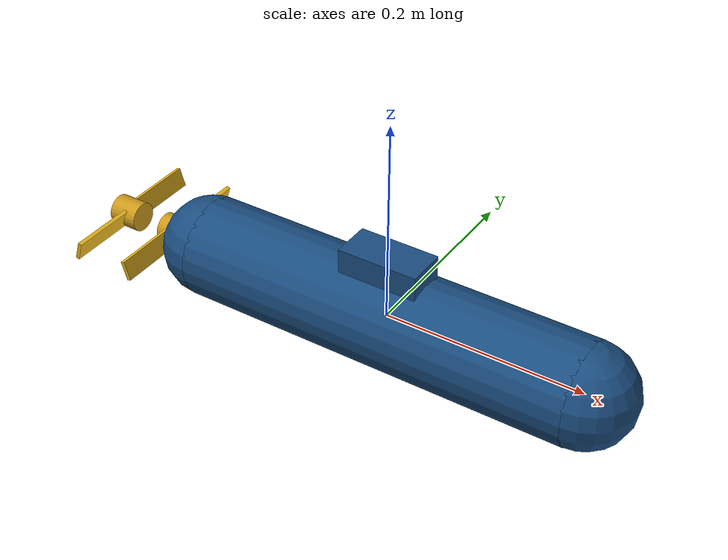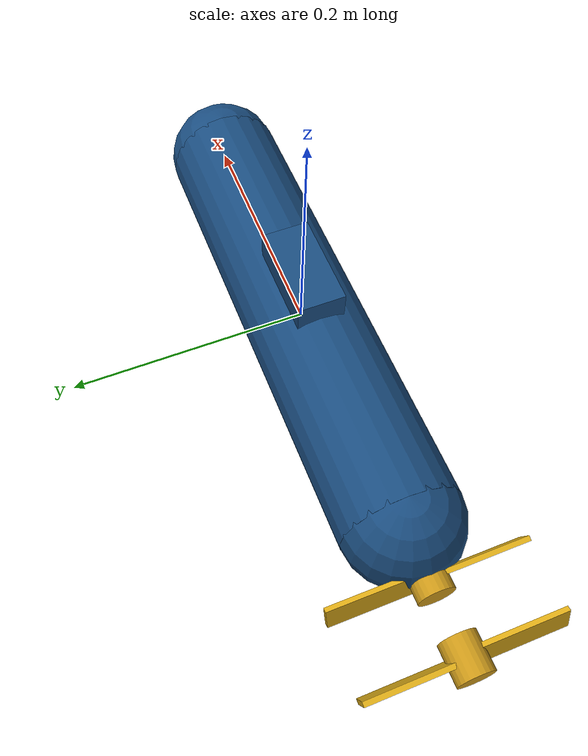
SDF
<?xml version="1.0" ?>
<sdf version="1.6">
  <world name="world">
    <model name="submarine">
      <pose>0 0 0 0 0 0</pose>

      <link name="base_link">
        <pose>0 0 0 0 0 0</pose>
        <inertial>
          <pose>0 0 0 0 0 0</pose>
          <mass>3.141592653589793</mass>
          <inertia>
            <ixx>0.003926990816987241</ixx>
            <ixy>0</ixy>
            <ixz>0</ixz>
            <iyy>0.04385139745635753</iyy>
            <iyz>0</iyz>
            <izz>0.04385139745635753</izz>
          </inertia>
        </inertial>
        <collision name="base_link_collision">
          <pose>0 0 0 0 1.5707963267948966 0</pose>
          <geometry>
            <cylinder>
              <radius>0.05</radius>
              <length>0.4</length>
            </cylinder>
          </geometry>
        </collision>
        <collision name="conning_tower_collision">
          <pose>0 0 0.05 0 0 0</pose>
          <geometry>
            <box>
              <size>0.08 0.04 0.04</size>
            </box>
          </geometry>
        </collision>
        <visual name="base_link_visual">
          <pose>0 0 0 0 1.5707963267948966 0</pose>
          <geometry>
            <cylinder>
              <radius>0.05</radius>
              <length>0.4</length>
            </cylinder>
          </geometry>
          <material>
            <ambient>0.1 0.3 0.5 1</ambient>
            <diffuse>0.1 0.3 0.5 1</diffuse>
            <specular>0.4 0.4 0.4 1</specular>
            <emissive>0 0 0 1</emissive>
          </material>
        </visual>
        <visual name="conning_tower_visual">
          <pose>0 0 0.05 0 0 0</pose>
          <geometry>
            <box>
              <size>0.08 0.04 0.04</size>
            </box>
          </geometry>
          <material>
            <ambient>0.1 0.3 0.5 1</ambient>
            <diffuse>0.1 0.3 0.5 1</diffuse>
            <specular>0.4 0.4 0.4 1</specular>
            <emissive>0 0 0 1</emissive>
          </material>
        </visual>
        <visual name="nose_visual">
          <pose>0.2 0 0 0 0 0</pose>
          <geometry>
            <sphere>
              <radius>0.05</radius>
            </sphere>
          </geometry>
          <material>
            <ambient>0.1 0.3 0.5 1</ambient>
            <diffuse>0.1 0.3 0.5 1</diffuse>
            <specular>0.4 0.4 0.4 1</specular>
            <emissive>0 0 0 1</emissive>
          </material>
        </visual>
        <visual name="tail_visual">
          <pose>-0.2 0 0 0 0 0</pose>
          <geometry>
            <sphere>
              <radius>0.05</radius>
            </sphere>
          </geometry>
          <material>
            <ambient>0.1 0.3 0.5 1</ambient>
            <diffuse>0.1 0.3 0.5 1</diffuse>
            <specular>0.4 0.4 0.4 1</specular>
            <emissive>0 0 0 1</emissive>
          </material>
        </visual>
      </link>

      <link name="propeller_hub_front">
        <pose>-0.245 0 0 0 0 0</pose>
        <inertial>
          <pose>0 0 0 0 0 0</pose>
          <mass>0.021205750411731104</mass>
          <inertia>
            <ixx>2.385646921319749e-06</ixx>
            <ixy>0</ixy>
            <ixz>0</ixz>
            <iyy>2.784321474773041e-06</iyy>
            <iyz>0</iyz>
            <izz>2.784321474773041e-06</izz>
          </inertia>
        </inertial>
        <collision name="propeller_hub_front_collision">
          <pose>0 0 0 0 1.5707963267948966 0</pose>
          <geometry>
            <cylinder>
              <radius>0.015</radius>
              <length>0.03</length>
            </cylinder>
          </geometry>
        </collision>
        <visual name="propeller_hub_front_visual">
          <pose>0 0 0 0 1.5707963267948966 0</pose>
          <geometry>
            <cylinder>
              <radius>0.015</radius>
              <length>0.03</length>
            </cylinder>
          </geometry>
          <material>
            <ambient>0.8 0.6 0.1 1</ambient>
            <diffuse>0.8 0.6 0.1 1</diffuse>
            <specular>0.4 0.4 0.4 1</specular>
            <emissive>0 0 0 1</emissive>
          </material>
        </visual>
      </link>

      <link name="front_blade_0">
        <pose>-0.245 0.04 0 0 0.3 0</pose>
        <inertial>
          <pose>0 0 0 0 0 0</pose>
          <mass>0.0064</mass>
          <inertia>
            <ixx>3.626666666666667e-06</ixx>
            <ixy>0</ixy>
            <ixz>0</ixz>
            <iyy>2.218666666666667e-07</iyy>
            <iyz>0</iyz>
            <izz>3.421333333333333e-06</izz>
          </inertia>
        </inertial>
        <collision name="front_blade_0_collision">
          <geometry>
            <box>
              <size>0.004 0.08 0.02</size>
            </box>
          </geometry>
        </collision>
        <visual name="front_blade_0_visual">
          <geometry>
            <box>
              <size>0.004 0.08 0.02</size>
            </box>
          </geometry>
          <material>
            <ambient>0.9 0.7 0.1 1</ambient>
            <diffuse>0.9 0.7 0.1 1</diffuse>
            <specular>0.4 0.4 0.4 1</specular>
            <emissive>0 0 0 1</emissive>
          </material>
        </visual>
      </link>

      <link name="front_blade_1">
        <pose>-0.245 -0.04 0 0 -0.3 0</pose>
        <inertial>
          <pose>0 0 0 0 0 0</pose>
          <mass>0.0064</mass>
          <inertia>
            <ixx>3.626666666666667e-06</ixx>
            <ixy>0</ixy>
            <ixz>0</ixz>
            <iyy>2.218666666666667e-07</iyy>
            <iyz>0</iyz>
            <izz>3.421333333333333e-06</izz>
          </inertia>
        </inertial>
        <collision name="front_blade_1_collision">
          <geometry>
            <box>
              <size>0.004 0.08 0.02</size>
            </box>
          </geometry>
        </collision>
        <visual name="front_blade_1_visual">
          <geometry>
            <box>
              <size>0.004 0.08 0.02</size>
            </box>
          </geometry>
          <material>
            <ambient>0.9 0.7 0.1 1</ambient>
            <diffuse>0.9 0.7 0.1 1</diffuse>
            <specular>0.4 0.4 0.4 1</specular>
            <emissive>0 0 0 1</emissive>
          </material>
        </visual>
      </link>

      <link name="propeller_hub_rear">
        <pose>-0.305 0 0 0 0 0</pose>
        <inertial>
          <pose>0 0 0 0 0 0</pose>
          <mass>0.021205750411731104</mass>
          <inertia>
            <ixx>2.385646921319749e-06</ixx>
            <ixy>0</ixy>
            <ixz>0</ixz>
            <iyy>2.784321474773041e-06</iyy>
            <iyz>0</iyz>
            <izz>2.784321474773041e-06</izz>
          </inertia>
        </inertial>
        <collision name="propeller_hub_rear_collision">
          <pose>0 0 0 0 1.5707963267948966 0</pose>
          <geometry>
            <cylinder>
              <radius>0.015</radius>
              <length>0.03</length>
            </cylinder>
          </geometry>
        </collision>
        <visual name="propeller_hub_rear_visual">
          <pose>0 0 0 0 1.5707963267948966 0</pose>
          <geometry>
            <cylinder>
              <radius>0.015</radius>
              <length>0.03</length>
            </cylinder>
          </geometry>
          <material>
            <ambient>0.8 0.6 0.1 1</ambient>
            <diffuse>0.8 0.6 0.1 1</diffuse>
            <specular>0.4 0.4 0.4 1</specular>
            <emissive>0 0 0 1</emissive>
          </material>
        </visual>
      </link>

      <link name="rear_blade_0">
        <pose>-0.305 0.04 0 0 -0.3 0</pose>
        <inertial>
          <pose>0 0 0 0 0 0</pose>
          <mass>0.0064</mass>
          <inertia>
            <ixx>3.626666666666667e-06</ixx>
            <ixy>0</ixy>
            <ixz>0</ixz>
            <iyy>2.218666666666667e-07</iyy>
            <iyz>0</iyz>
            <izz>3.421333333333333e-06</izz>
          </inertia>
        </inertial>
        <collision name="rear_blade_0_collision">
          <geometry>
            <box>
              <size>0.004 0.08 0.02</size>
            </box>
          </geometry>
        </collision>
        <visual name="rear_blade_0_visual">
          <geometry>
            <box>
              <size>0.004 0.08 0.02</size>
            </box>
          </geometry>
          <material>
            <ambient>0.9 0.7 0.1 1</ambient>
            <diffuse>0.9 0.7 0.1 1</diffuse>
            <specular>0.4 0.4 0.4 1</specular>
            <emissive>0 0 0 1</emissive>
          </material>
        </visual>
      </link>

      <link name="rear_blade_1">
        <pose>-0.305 -0.04 0 0 0.3 0</pose>
        <inertial>
          <pose>0 0 0 0 0 0</pose>
          <mass>0.0064</mass>
          <inertia>
            <ixx>3.626666666666667e-06</ixx>
            <ixy>0</ixy>
            <ixz>0</ixz>
            <iyy>2.218666666666667e-07</iyy>
            <iyz>0</iyz>
            <izz>3.421333333333333e-06</izz>
          </inertia>
        </inertial>
        <collision name="rear_blade_1_collision">
          <geometry>
            <box>
              <size>0.004 0.08 0.02</size>
            </box>
          </geometry>
        </collision>
        <visual name="rear_blade_1_visual">
          <geometry>
            <box>
              <size>0.004 0.08 0.02</size>
            </box>
          </geometry>
          <material>
            <ambient>0.9 0.7 0.1 1</ambient>
            <diffuse>0.9 0.7 0.1 1</diffuse>
            <specular>0.4 0.4 0.4 1</specular>
            <emissive>0 0 0 1</emissive>
          </material>
        </visual>
      </link>

      <joint name="joint_propeller_front" type="revolute">
        <parent>base_link</parent>
        <child>propeller_hub_front</child>
        <pose>0 0 0 0 0 0</pose>
        <axis>
          <xyz>1 0 0</xyz>
          <limit>
            <lower>-1e16</lower>
            <upper>1e16</upper>
          </limit>
        </axis>
      </joint>
      <joint name="joint_front_blade_0" type="fixed">
        <parent>propeller_hub_front</parent>
        <child>front_blade_0</child>
        <pose>0 0 0 0 0 0</pose>
      </joint>
      <joint name="joint_front_blade_1" type="fixed">
        <parent>propeller_hub_front</parent>
        <child>front_blade_1</child>
        <pose>0 0 0 0 0 0</pose>
      </joint>

      <joint name="joint_propeller_rear" type="revolute">
        <parent>base_link</parent>
        <child>propeller_hub_rear</child>
        <pose>0 0 0 0 0 0</pose>
        <axis>
          <xyz>1 0 0</xyz>
          <limit>
            <lower>-1e16</lower>
            <upper>1e16</upper>
          </limit>
        </axis>
      </joint>
      <joint name="joint_rear_blade_0" type="fixed">
        <parent>propeller_hub_rear</parent>
        <child>rear_blade_0</child>
        <pose>0 0 0 0 0 0</pose>
      </joint>
      <joint name="joint_rear_blade_1" type="fixed">
        <parent>propeller_hub_rear</parent>
        <child>rear_blade_1</child>
        <pose>0 0 0 0 0 0</pose>
      </joint>
    </model>
  </world>
</sdf>
